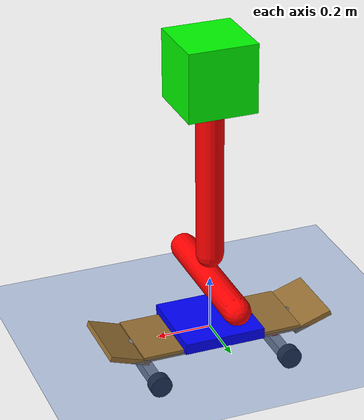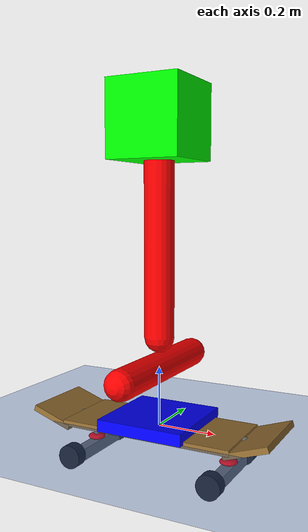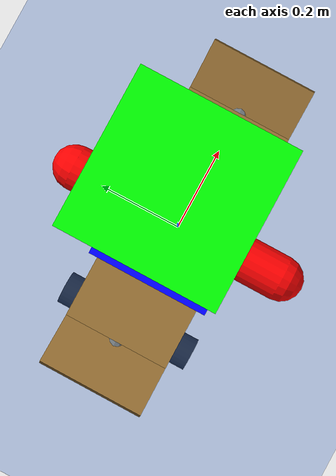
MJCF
<mujoco model="Pendulum">
  <include file="../../common.xml"/>
  <size memory="800K"/>
  <!-- weld the center of skateboard to the center of pendulum -->

  <!-- COMBINED -->

   <!-- /COMBINED -->

  <!-- WELDED -->

  <include file="../pendulum.xml" />
  <include file="./skateboard.xml" />
  <equality>
    <weld body1="pendulum_center" body2="board_center" solref="0.01 1" solimp="0.9 0.95 0.001" anchor="0 0 0" />
  </equality>

  <keyframe>
    <key name="home" qpos="1.08624e-07 6.38521e-09 0.152725 1 1.12503e-09 3.66045e-10 6.7529e-16 -2.14371e-07 -9.18235e-08 1.08571e-07 6.48736e-09 0.139471 1 1.02144e-09 2.96843e-10 6.645e-16 2.93223e-06 2.93223e-06 2.93223e-06 2.93223e-06"/>
  </keyframe>

  <!-- /WELDED -->

  <custom>
    <numeric name="agent_planner" data="3" />
    <numeric name="agent_horizon" data="0.3" />
    <numeric name="agent_timestep" data="0.015" />
    <numeric name="sampling_spline_points" data="6" />
    <numeric name="sampling_exploration" data="0.05" />
    <numeric name="residual_Height Goal" data="1.155 0.0 1.5" />
    <numeric name="residual_Velocity" data="0 -5 5" />
    <numeric name="residual_Heading" data="0 -3.14 3.14" />
    <numeric name="ilqg_num_rollouts" data="8" />
    <numeric name="ilqg_regularization_type" data="1" />
    <numeric name="ilqg_representation" data="2" />
  </custom>

  <sensor>
    <user name="Height" dim="1" user="6 100.0 0.0 100.0 0.1" />
    <user name="Velocity." dim="1" user="0 10.0 0.0 100.0" />
    <user name="Heading" dim="2" user="0 10 0 .03" />
    <user name="Joint Vel." dim="3" user="0 0.01 0.0 0.1" />
    <user name="Control" dim="3" user="3 0.025 0.0 0.1 0.3" />
    <framepos name="trace0" objtype="body" objname="cube"/>
    <framelinvel name="skateboard_framelinvel" objtype="body" objname="skateboard"/>
    <framelinvel name="cube_framelinvel" objtype="body" objname="cube"/>
    <framepos name="cube_position" objtype="body" objname="cube"/>
    <framelinvel name="cube_subtreelinvel" objtype="body" objname="cube" />
    <subtreecom name="cube_subtreecom" body="cube"/>
  </sensor>

</mujoco>

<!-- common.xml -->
<mujoco>

    <visual>
        <headlight ambient=".4 .4 .4" diffuse=".8 .8 .8" specular="0.1 0.1 0.1"/>
        <map znear=".01"/>
        <quality shadowsize="2048"/>
        <global elevation="-15"/>
    </visual>

    <asset>
        <texture name="blue_grid" type="2d" builtin="checker" rgb1=".02 .14 .44" rgb2=".27 .55 1" width="300" height="300" mark="edge" markrgb="1 1 1"/>
        <material name="blue_grid" texture="blue_grid" texrepeat="1 1" texuniform="true" reflectance=".2"/>

        <texture name="grey_grid" type="2d" builtin="checker" rgb1=".26 .26 .26" rgb2=".6 .6 .6" width="300" height="300" mark="edge" markrgb="1 1 1"/>
        <material name="grey_grid" texture="grey_grid" texrepeat="1 1" texuniform="true" reflectance=".2"/>
        <texture name="skybox" type="skybox" builtin="gradient" rgb1=".66 .79 1" rgb2=".9 .91 .93" width="800" height="800"/>

        <material name="self" rgba=".7 .5 .3 1"/>
        <material name="self_default" rgba=".7 .5 .3 1"/>
        <material name="self_highlight" rgba="0 .5 .3 1"/>
        <material name="effector" rgba=".7 .4 .2 1"/>
        <material name="effector_default" rgba=".7 .4 .2 1"/>
        <material name="effector_highlight" rgba="0 .5 .3 1"/>
        <material name="decoration" rgba=".2 .6 .3 1"/>
        <material name="eye" rgba="0 .2 1 1"/>
        <material name="target" rgba=".6 .3 .3 1"/>
        <material name="target_default" rgba=".6 .3 .3 1"/>
        <material name="target_highlight" rgba=".6 .3 .3 .4"/>
        <material name="site" rgba=".5 .5 .5 .3"/>
    </asset>

    <size memory="1M"/>

    <statistic extent="0.4" center="0.3 0.1 0"/>

    <visual>
        <quality shadowsize="8192"/>
        <global azimuth="180" elevation="-30"/>
    </visual>

    <default>
        <geom friction="1.0"/>
    </default>

    <compiler angle="radian" autolimits="true"/>

    <asset>
        <mesh name="apple" file="../../shared_assets/apple/apple.obj" />
        <mesh name="apple_contact0" file="../../shared_assets/apple/contact0.stl"  />
        <mesh name="apple_contact1" file="../../shared_assets/apple/contact1.stl"  />

        <mesh name="doorknob" file="../../shared_assets/doorknob/doorknob.obj" />

        <mesh name="flashlight" file="../../shared_assets/flashlight/flashlight.obj" />
        <mesh name="flashlight_contact0" file="../../shared_assets/flashlight/contact0.stl"  />
        <mesh name="flashlight_contact1" file="../../shared_assets/flashlight/contact1.stl"  />

        <mesh name="hammer" file="../../shared_assets/hammer/hammer.obj" />
        <mesh name="hammer_contact0" file="../../shared_assets/hammer/contact0.stl"  />
        <mesh name="hammer_contact1" file="../../shared_assets/hammer/contact1.stl"  />

        <mesh name="phone" file="../../shared_assets/phone/phone.obj" />
        <mesh name="phone_contact0" file="../../shared_assets/phone/contact0.stl"  />
        <mesh name="phone_contact1" file="../../shared_assets/phone/contact1.stl"  />
        <mesh name="phone_contact2" file="../../shared_assets/phone/contact2.stl"  />

        <mesh name="stapler" file="../../shared_assets/stapler/stapler.obj" />
        <mesh name="stapler_contact0" file="../../shared_assets/stapler/contact0.stl"  />
        <mesh name="stapler_contact1" file="../../shared_assets/stapler/contact1.stl"  />
        <mesh name="stapler_contact2" file="../../shared_assets/stapler/contact2.stl"  />
        <mesh name="stapler_contact3" file="../../shared_assets/stapler/contact3.stl"  />
        <mesh name="stapler_contact4" file="../../shared_assets/stapler/contact4.stl"  />

        <mesh name="waterbottle" file="../../shared_assets/waterbottle/waterbottle.obj" />
        <mesh name="waterbottle_contact0" file="../../shared_assets/waterbottle/contact0.stl"  />
        <mesh name="waterbottle_contact1" file="../../shared_assets/waterbottle/contact1.stl"  />
    </asset>

</mujoco>

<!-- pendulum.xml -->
<mujoco model="pendulumboard">
   <statistic extent="2" center="0 0 1"/>

  <default>
    <motor ctrlrange="-1 1" ctrllimited="true"/>
    <site size=".04" group="3"/>
    <default class="body">
      <!-- tracking site -->
      <default class="tracking_site">
        <site type="sphere" size="0.027" rgba="1 0 0 1" group="3"/>
      </default>
      <joint type="hinge" damping=".2" stiffness="1" armature=".01" limited="true" solimplimit="0 .99 .01"/>
    </default>
  </default>
  <worldbody>
    <geom name="floor" type="plane" conaffinity="1" size="50 50 .05" material="blue_grid"/>
    <camera name="side" mode="trackcom" pos="-1.753 -3.840 2.164" xyaxes="0.843 -0.537 0.000 0.153 0.240 0.959"/>

    <body name="pendulum_root" pos="0 0 0">
      <freejoint name="root"/>
      <body name="pendulum_center">
        <geom name="pendulum_root_geom" pos="0 0 0.02" size="0.15 0.15 0.02" type="box" rgba="0 0 1 1"/>
      </body>
      <!-- horizontal capsule below the front_capsule for tipping -->
      <body name="horizontal_capsule">
        <joint name="horizontal_capsule" type="hinge" axis="0 1 0" range="-45 45" limited="true"/>
        <geom name="horizontal_geom_capsule" fromto="0 -0.25 0.2 0 0.25 0.2" size="0.05" type="capsule" rgba="1 0 0 1"/>
        <body name="front_capsule">
          <joint name="front_capsule" type="hinge" axis="1 0 0" range="-1 1" limited="true"/>
          <geom name="front_geom_capsule" fromto="0 0 0.3 0 0 1" size="0.05" type="capsule" rgba="1 0 0 1" mass="40.8"/>
          <!-- add heavy cube on top -->
          <body name="cube">
            <geom name="cube_geom" pos="0 0 1" size="0.125 0.125 0.125" type="box" rgba="0 1 0 1"/>
          </body>
        </body>
      </body>
    </body>
  </worldbody>
  <actuator>
    <motor joint="front_capsule" ctrlrange="-1.0 1.0" gear="100" ctrllimited="true"/>
    <motor joint="horizontal_capsule" ctrlrange="-1.0 1.0" gear="100" ctrllimited="true"/>
  </actuator>
   <contact>
        <exclude body1="pendulum_root" body2="horizontal_capsule"/>
        <exclude body1="pendulum_root" body2="front_capsule"/>
        <exclude body1="pendulum_root" body2="cube"/>
        <exclude body1="horizontal_capsule" body2="front_capsule"/>
        <exclude body1="horizontal_capsule" body2="cube"/>
        <exclude body1="front_capsule" body2="cube"/>
    </contact>

</mujoco>

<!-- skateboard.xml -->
<mujoco model="skateboard">
  <default>
    <default class="skateboard">
      <default class="truck">
        <geom type="capsule" size="0.03" rgba="0.4414 0.4727 0.4922 1"/>
      </default>
      <default class="hanger">
        <!-- TODO(hartikainen): need to fix the orientation for the bodies previously -->
        <!-- welded by these fixed joints. -->
        <geom type="capsule" fromto="0.0 0.1 -0.05 0.0 -0.1 -0.05" size="0.015" rgba="0.4414 0.4727 0.4922 1"/>
      </default>
      <default class="wheel">
        <!-- TODO(hartikainen): need to fix the orientation for the bodies previously -->
        <!-- welded by these fixed joints. -->
        <geom type="sphere" size="0.03" rgba="0.8867 0.2383 0.5781 1"/>
      </default>
      <default class="board-base-ball">
        <default class="board-slider">
          <joint type="slide" limited="false" stiffness="0" damping="1" frictionloss="0" armature="0"/>
          <motor ctrllimited="true" ctrlrange="-1 1" gear="100" />
        </default>
        <default class="board-ball">
          <joint type="ball" limited="false" damping="3"/>
        </default>
      </default>
    </default>

  </default>

  <worldbody>

    <body name="skateboard" pos="0 0 0">
      <joint name="board-x" axis="1 0 0" class="board-slider"/>
      <joint name="board-y" axis="0 1 0" class="board-slider"/>
      <joint name="board-z" axis="0 0 1" class="board-slider"/>
      <joint name="board-ball" class="board-ball"/>

      <!-- board -->
      <body name="board">
        <body name="board_center">
          <geom name="board-base" type="box" size="0.3 0.13 0.01" rgba="0.5859 0.4336 0.1992 1"/>
        </body>
        <geom name="board-nose" type="box" size="0.075 0.13 0.01" pos="0.35 0.0 0.01" quat="-0.9659 0 0.1588 0" rgba="0.5859 0.4336 0.1992 1"/>
        <geom name="board-tail" type="box" size="0.075 0.13 0.01" pos="-0.35 0.0 0.01" quat="0.9659 0 0.1588 0" rgba="0.5859 0.4336 0.1992 1"/>
      </body>
      <!-- trucks -->
      <geom name="truck-nose" class="truck" fromto="0.20 0.0 -0.020 0.30 0.0 -0.020"/>
      <geom name="truck-tail" class="truck" fromto="-0.20 0.0 -0.020 -0.30 0.0 -0.020"/>

       <!-- Baseplate -->
      <body name="baseplate-front" pos="0.25 0.0 -0.01">
        <geom type="box" size="0.05 0.1 0.01" rgba="0.5 0.5 0.5 1"/>
        <body name="kingpin-front" pos="0 0 -0.01">
          <geom type="capsule" fromto="0 0 0 0 0 -0.05" size="0.01" rgba="0.5 0.5 0.5 1"/>

          <!-- Bushings and hanger -->
          <body name="bushings-and-hanger-front" pos="0 0 -0.06">
            <geom name="bottom-bushing-front" type="ellipsoid" size="0.03 0.03 0.01" rgba="1 0 0 1"/>
            <geom name="hanger-front" type="box" size="0.02 0.12 0.02" pos="0 0 -0.03" rgba="0.5 0.5 0.5 1"/>

            <!-- Wheels -->
            <body name="wheel-front-left" pos="0.0 0.15 -0.02">
              <joint name="wheel-front-left" type="hinge" axis="0 1 0"/>
              <geom type="cylinder" size="0.04 0.02" rgba="0.1 0.1 0.1 1" quat="0.707 0.707 0 0"/>
            </body>
            <body name="wheel-front-right" pos="0.0 -0.15 -0.02">
              <joint name="wheel-front-right" type="hinge" axis="0 1 0"/>
              <geom type="cylinder" size="0.04 0.02" rgba="0.1 0.1 0.1 1" quat="0.707 0.707 0 0"/>
            </body>

            <!-- Hinge joint that allows the hanger to rotate -->
          </body>
        </body>
      </body>
      <!-- identical but for back truck -->
      <body name="baseplate-back" pos="-0.25 0.0 -0.01">
        <geom type="box" size="0.05 0.1 0.01" rgba="0.5 0.5 0.5 1"/>
        <body name="kingpin-back" pos="0 0 -0.01">
          <geom type="capsule" fromto="0 0 0 0 0 -0.05" size="0.01" rgba="0.5 0.5 0.5 1"/>

          <!-- Bushings and hanger -->
          <body name="bushings-and-hanger-back" pos="0 0 -0.06">
            <geom name="bottom-bushing-back" type="ellipsoid" size="0.03 0.03 0.01" rgba="1 0 0 1"/>
            <geom name="hanger-back" type="box" size="0.02 0.12 0.02" pos="0 0 -0.03" rgba="0.5 0.5 0.5 1"/>

            <!-- Wheels -->
            <body name="wheel-back-left" pos="0.0 0.15 -0.02">
              <joint name="wheel-back-left" type="hinge" axis="0 1 0"/>
              <geom type="cylinder" size="0.04 0.02" rgba="0.1 0.1 0.1 1" quat="0.707 0.707 0 0"/>
            </body>
            <body name="wheel-back-right" pos="0.0 -0.15 -0.02">
              <joint name="wheel-back-right" type="hinge" axis="0 1 0"/>
              <geom type="cylinder" size="0.04 0.02" rgba="0.1 0.1 0.1 1" quat="0.707 0.707 0 0"/>
            </body>

            <!-- Hinge joint that allows the hanger to rotate -->
            <!-- TODO(elias): need to update losses of numbered joints in order to work -->
          </body>
        </body>
      </body>
      <!-- exlude contact between all board parts,   trucks and kingpins and hangars -->

    </body>
  </worldbody>
  <actuator>
    <!-- Control the x-translation of the cube. We leave the
         yz-axes unactuated. This acts as a throttle -->
    <motor name="throttle-actuator" joint="board-x" class="board-slider" />
  </actuator>
  <contact>
        <exclude body1="board" body2="baseplate-front"/>
        <exclude body1="board" body2="baseplate-back"/>
        <exclude body1="board" body2="wheel-front-left"/>
        <exclude body1="board" body2="wheel-front-right"/>
        <exclude body1="board" body2="wheel-back-left"/>
        <exclude body1="board" body2="wheel-back-right"/>
        <exclude body1="baseplate-front" body2="wheel-front-left"/>
        <exclude body1="baseplate-front" body2="wheel-front-right"/>
        <exclude body1="baseplate-front" body2="wheel-back-left"/>
        <exclude body1="baseplate-front" body2="wheel-back-right"/>
        <exclude body1="baseplate-back" body2="wheel-front-left"/>
        <exclude body1="baseplate-back" body2="wheel-front-right"/>
        <exclude body1="baseplate-back" body2="wheel-back-left"/>
        <exclude body1="baseplate-back" body2="wheel-back-right"/>
        <exclude body1="wheel-front-left" body2="wheel-front-right"/>
        <exclude body1="wheel-front-left" body2="wheel-back-left"/>
        <exclude body1="wheel-front-left" body2="wheel-back-right"/>
        <exclude body1="wheel-front-right" body2="wheel-back-left"/>
        <exclude body1="wheel-front-right" body2="wheel-back-right"/>
        <exclude body1="wheel-back-left" body2="wheel-back-right"/>
        <exclude body1="baseplate-front" body2="baseplate-back"/>
        <exclude body1="baseplate-front" body2="kingpin-front"/>
        <exclude body1="baseplate-front" body2="kingpin-back"/>
        <exclude body1="baseplate-front" body2="bushings-and-hanger-front"/>
        <exclude body1="baseplate-front" body2="bushings-and-hanger-back"/>
        <exclude body1="baseplate-back" body2="kingpin-front"/>
        <exclude body1="baseplate-back" body2="kingpin-back"/>
        <exclude body1="baseplate-back" body2="bushings-and-hanger-front"/>
        <exclude body1="baseplate-back" body2="bushings-and-hanger-back"/>
        <exclude body1="kingpin-front" body2="kingpin-back"/>
        <exclude body1="kingpin-front" body2="bushings-and-hanger-front"/>
        <exclude body1="kingpin-front" body2="bushings-and-hanger-back"/>
        <exclude body1="kingpin-back" body2="bushings-and-hanger-front"/>
        <exclude body1="kingpin-back" body2="bushings-and-hanger-back"/>
        <exclude body1="bushings-and-hanger-front" body2="bushings-and-hanger-back"/>
      </contact>
</mujoco>
